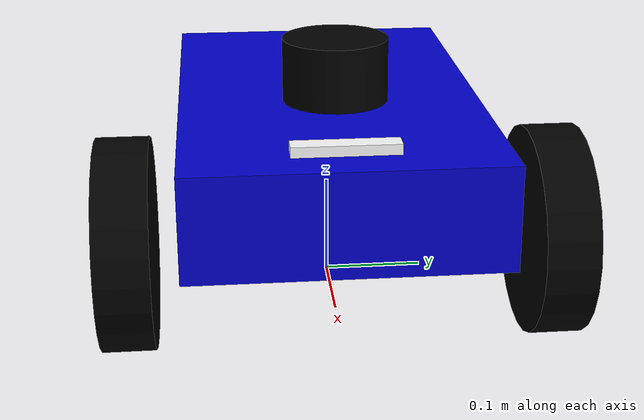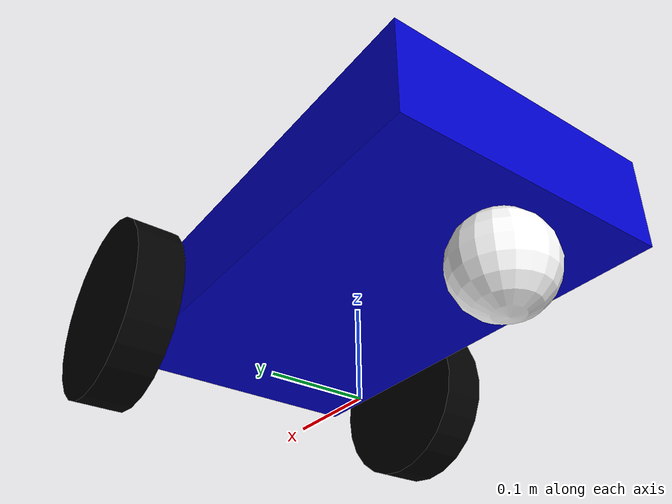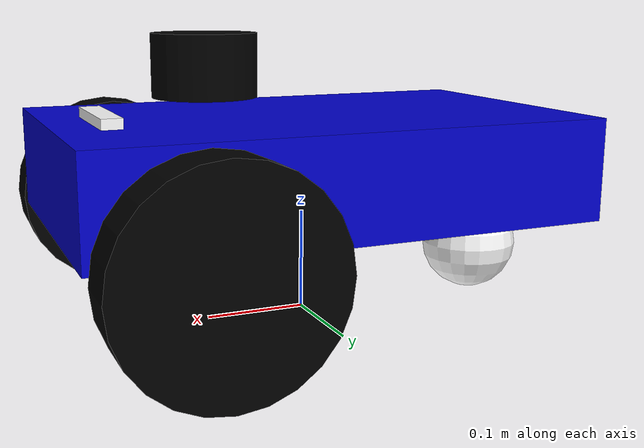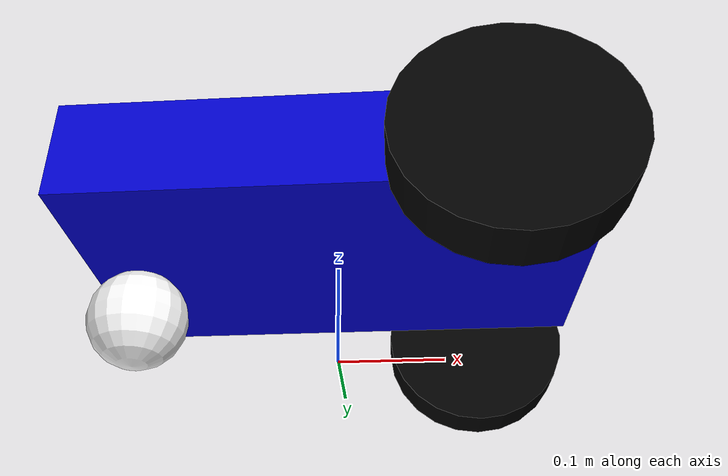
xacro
<?xml version="1.0" ?>
<robot name="geo_bot" xmlns:xacro="http://ros.org/wiki/xacro">

  <material name="blue"><color rgba="0 0 0.8 1"/></material>
  <material name="black"><color rgba="0 0 0 1"/></material>
  <material name="white"><color rgba="1 1 1 1"/></material>

  <xacro:macro name="box_inertia" params="m w h d">
    <inertial>
      <mass value="${m}"/><inertia ixx="${(m/12) * (h*h + d*d)}" ixy="0.0" ixz="0.0" iyy="${(m/12) * (w*w + d*d)}" iyz="0.0" izz="${(m/12) * (w*w + h*h)}"/>
    </inertial>
  </xacro:macro>

  <xacro:macro name="cylinder_inertia" params="m r h">
    <inertial>
      <mass value="${m}"/><inertia ixx="${(m/12) * (3*r*r + h*h)}" ixy="0.0" ixz="0.0" iyy="${(m/12) * (3*r*r + h*h)}" iyz="0.0" izz="${(m/2) * (r*r)}"/>
    </inertial>
  </xacro:macro>

  <link name="base_footprint"/>
  <joint name="base_joint" type="fixed">
    <parent link="base_footprint"/><child link="base_link"/>
    <origin xyz="0 0 0.15" rpy="0 0 0"/>
  </joint>

  <link name="base_link">
    <visual><geometry><box size="0.5 0.3 0.1"/></geometry> <material name="blue"/></visual>
    <collision><geometry><box size="0.5 0.3 0.1"/></geometry></collision>
    <xacro:box_inertia m="5.0" w="0.5" h="0.3" d="0.1"/>
  </link>

  <link name="wheel_left_link">
    <visual><geometry><cylinder radius="0.1" length="0.05"/></geometry><material name="black"/></visual>
    <collision><geometry><cylinder radius="0.1" length="0.05"/></geometry></collision>
    <xacro:cylinder_inertia m="1.0" r="0.1" h="0.05"/>
  </link>
  <joint name="wheel_left_joint" type="continuous">
    <parent link="base_link"/><child link="wheel_left_link"/>
    <origin xyz="0.15 0.20 -0.05" rpy="-1.57 0 0"/><axis xyz="0 0 1"/>
    </joint>

  <link name="wheel_right_link">
    <visual><geometry><cylinder radius="0.1" length="0.05"/></geometry><material name="black"/></visual>
    <collision><geometry><cylinder radius="0.1" length="0.05"/></geometry></collision>
    <xacro:cylinder_inertia m="1.0" r="0.1" h="0.05"/>
  </link>
  <joint name="wheel_right_joint" type="continuous">
    <parent link="base_link"/><child link="wheel_right_link"/>
    <origin xyz="0.15 -0.20 -0.05" rpy="-1.57 0 0"/><axis xyz="0 0 1"/>
    </joint>

  <link name="caster_link">
    <visual><geometry><sphere radius="0.05"/></geometry><material name="white"/></visual>
    <collision><geometry><sphere radius="0.05"/></geometry></collision>
    <inertial>
      <mass value="0.01"/>
      <inertia ixx="0.0001" ixy="0" ixz="0" iyy="0.0001" iyz="0" izz="0.0001"/>
    </inertial>
  </link>
  <joint name="caster_joint" type="fixed">
    <parent link="base_link"/><child link="caster_link"/><origin xyz="-0.2 0 -0.1"/>
  </joint>

  <link name="imu_link"/>
  <joint name="imu_joint" type="fixed">
    <parent link="base_link"/><child link="imu_link"/><origin xyz="0 0 0" rpy="0 0 0"/>
  </joint>

  <link name="velodyne">
    <visual><geometry><cylinder radius="0.05" length="0.06"/></geometry><material name="black"/></visual>
    <collision><geometry><cylinder radius="0.05" length="0.06"/></geometry></collision>
    <xacro:cylinder_inertia m="0.1" r="0.05" h="0.06"/>
  </link>
  <joint name="velodyne_joint" type="fixed">
    <parent link="base_link"/><child link="velodyne"/><origin xyz="0.1 0 0.1" rpy="0 0 0"/>
  </joint>

  <link name="camera_link">
    <visual><geometry><box size="0.02 0.1 0.02"/></geometry><material name="white"/></visual>
  </link>
  <joint name="camera_joint" type="fixed">
    <parent link="base_link"/><child link="camera_link"/><origin xyz="0.2 0 0.05" rpy="0 0 0"/>
  </joint>
  <link name="camera_link_optical"/>
  <joint name="camera_optical_joint" type="fixed">
    <origin xyz="0 0 0" rpy="-1.5707 0 -1.5707"/>
    <parent link="camera_link"/><child link="camera_link_optical"/>
  </joint>

  <gazebo reference="caster_link">
    <mu1>0.0</mu1>
    <mu2>0.0</mu2>
    <kp>1000000.0</kp>
    <kd>100.0</kd>
    <material>Gazebo/White</material>
  </gazebo>

  <gazebo reference="wheel_left_link">
    <mu1>1.2</mu1>
    <mu2>1.2</mu2>
    <kp>1000000.0</kp>
    <kd>100.0</kd>
  </gazebo>

  <gazebo reference="wheel_right_link">
    <mu1>1.2</mu1>
    <mu2>1.2</mu2>
    <kp>1000000.0</kp>
    <kd>100.0</kd>
  </gazebo>

  <gazebo>
    <plugin name="diff_drive" filename="libgazebo_ros_diff_drive.so">
      <update_rate>30</update_rate>
      <left_joint>wheel_left_joint</left_joint>
      <right_joint>wheel_right_joint</right_joint>
      <wheel_separation>0.4</wheel_separation>
      <wheel_diameter>0.2</wheel_diameter>

      <max_wheel_torque>20.0</max_wheel_torque>
      <max_wheel_acceleration>2.0</max_wheel_acceleration>

      <publish_odom>true</publish_odom>
      <publish_odom_tf>true</publish_odom_tf>
      <odometry_frame>odom</odometry_frame>
      <robot_base_frame>base_footprint</robot_base_frame>
    </plugin>
  </gazebo>

  <gazebo reference="camera_link">
    <sensor type="depth" name="camera">
      <update_rate>20</update_rate>
      <camera>
        <horizontal_fov>1.047</horizontal_fov>
        <image><width>640</width><height>480</height><format>R8G8B8</format></image>
        <clip><near>0.05</near><far>8.0</far></clip>
      </camera>
      <plugin name="camera_controller" filename="libgazebo_ros_camera.so">
        <frame_name>camera_link_optical</frame_name>
        <min_depth>0.1</min_depth>
        <max_depth>8.0</max_depth>
      </plugin>
    </sensor>
  </gazebo>

  <gazebo reference="velodyne">
    <sensor type="ray" name="velodyne_sensor">
      <visualize>false</visualize>
      <update_rate>10</update_rate>
      <ray>
        <scan>
          <horizontal><samples>360</samples><resolution>1</resolution><min_angle>-3.14</min_angle><max_angle>3.14</max_angle></horizontal>
          <vertical><samples>16</samples><resolution>1</resolution><min_angle>-0.26</min_angle><max_angle>0.26</max_angle></vertical>
        </scan>
        <range><min>0.3</min><max>10.0</max></range>
      </ray>
      <plugin name="gazebo_ros_laser_controller" filename="libgazebo_ros_velodyne_laser.so">
        <ros><remapping>~/out:=/points_raw</remapping></ros>
        <frame_name>velodyne</frame_name>
      </plugin>
    </sensor>
  </gazebo>

</robot>
